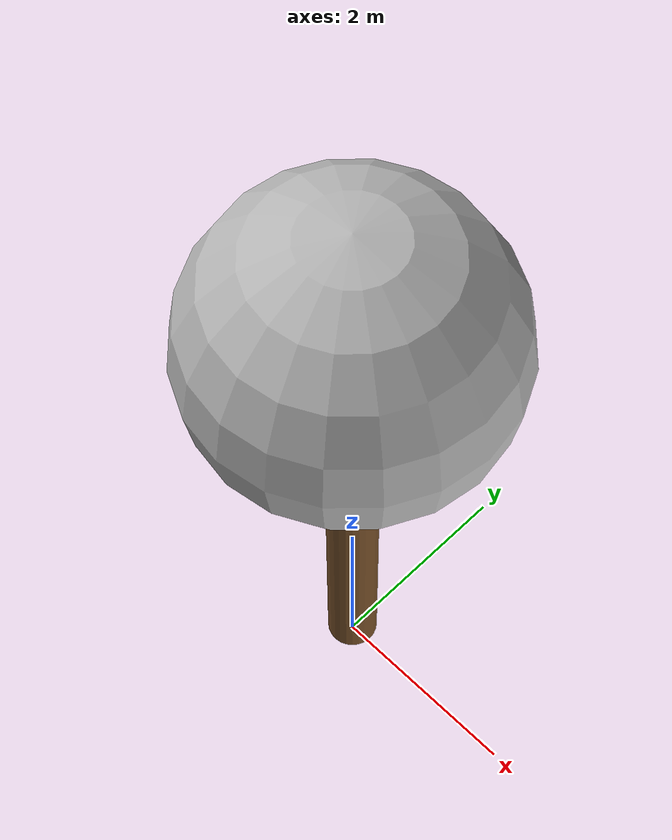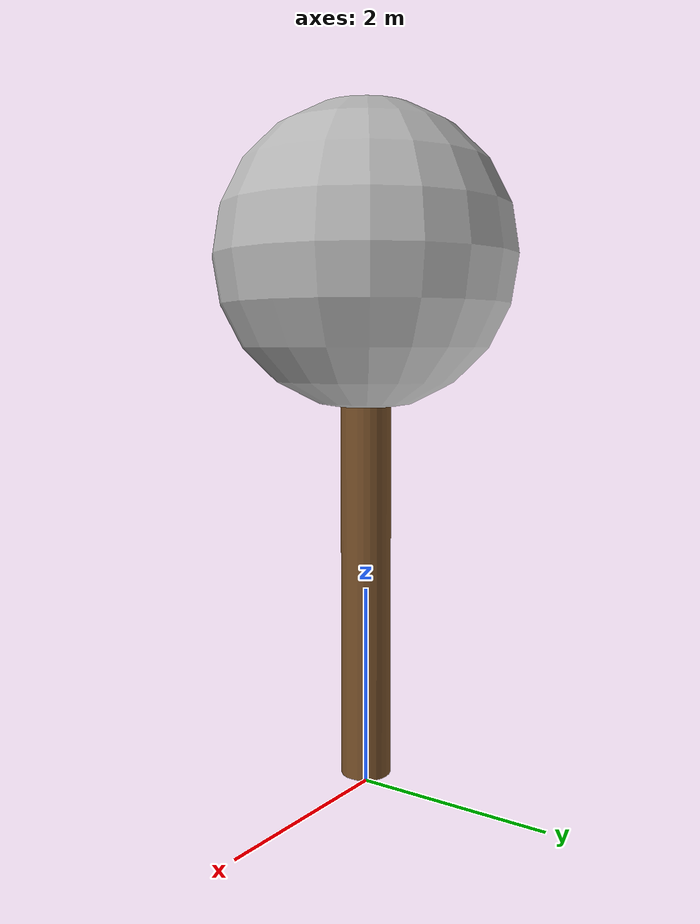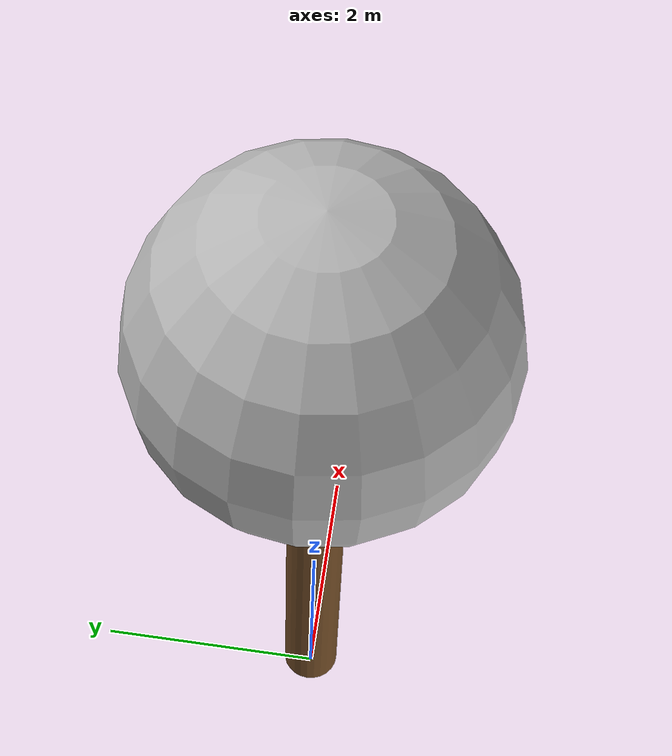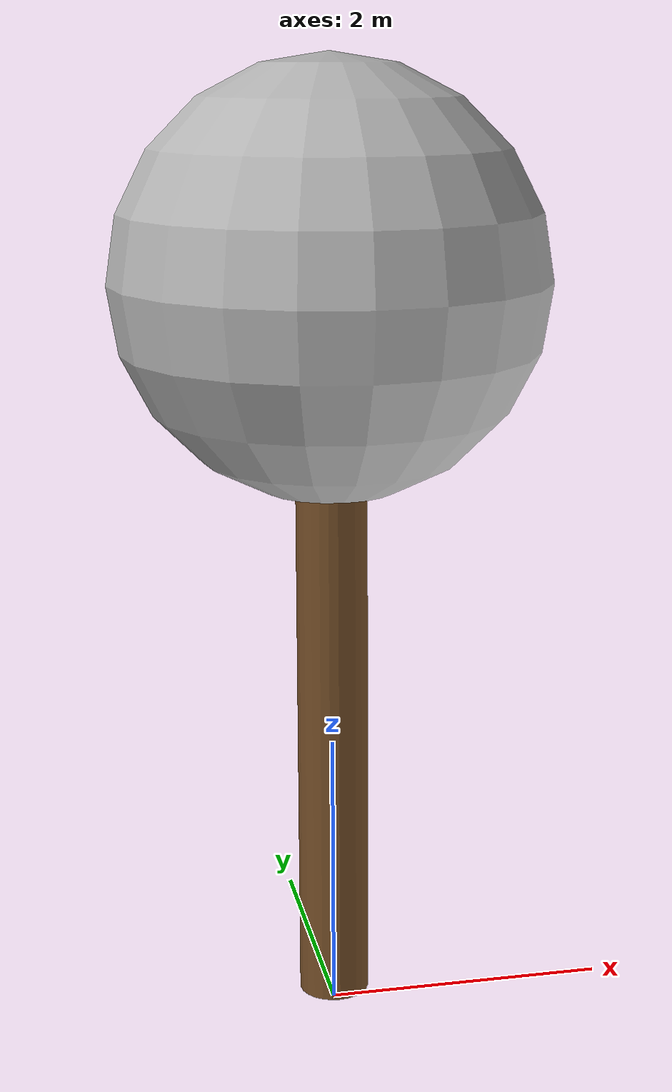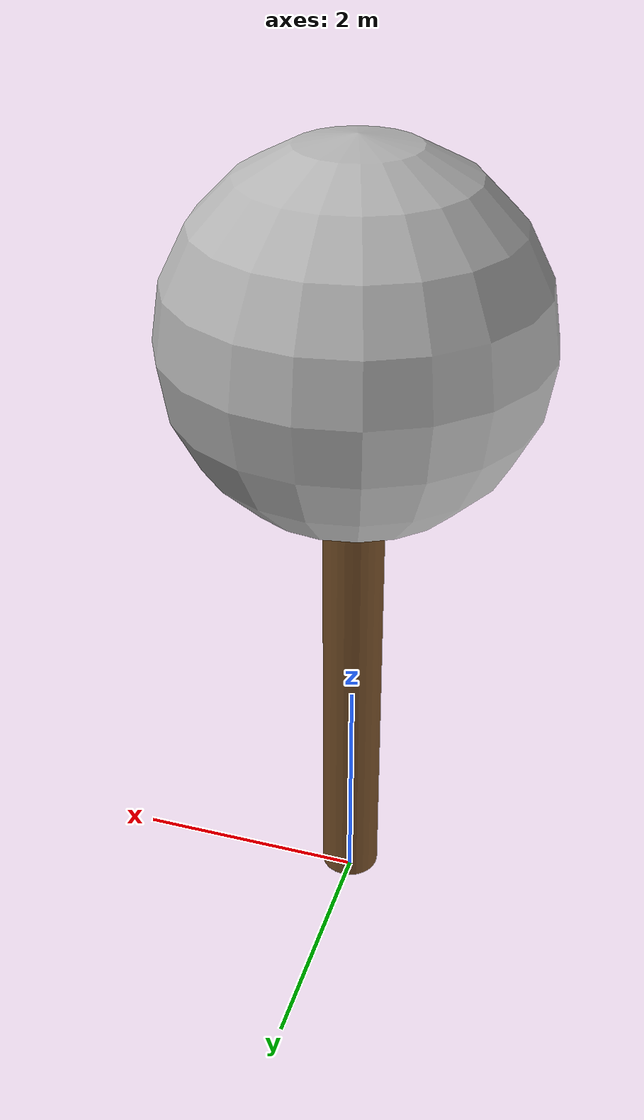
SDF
<?xml version="1.0" ?>
<sdf version="1.5">
  <model name="tree_simple">
	  <static>1</static>
	<link name="link">
      <pose>0 0 0.1 0 0 0</pose>
      <inertial>
        <mass>666</mass>
        <inertia>
          <ixx>0.08611666666666669</ixx>
          <ixy>0</ixy>
          <ixz>0</ixz>
          <iyy>0.08611666666666669</iyy>
          <iyz>0</iyz>
          <izz>0.08611666666666669</izz>
        </inertia>
      </inertial>

      <collision name="collision_trunk">
        <pose>0 0 2.0 0 0 0</pose>
        <geometry>
          <cylinder>
            <radius>0.25</radius>
            <length>4</length>
          </cylinder>
        </geometry>
        <surface>
          <contact>
            <poissons_ratio>0.347</poissons_ratio>
            <elastic_modulus>8.8e+09</elastic_modulus>
            <ode>
              <kp>100000</kp>
              <kd>100</kd>
              <max_vel>100.0</max_vel>
              <min_depth>0.001</min_depth>
            </ode>
          </contact>
          <friction>
            <torsional>
              <coefficient>1.0</coefficient>
              <use_patch_radius>0</use_patch_radius>
              <surface_radius>0.01</surface_radius>
            </torsional>
          </friction>
        </surface>
      </collision>

      <collision name="collision_treetop">
        <pose>0 0 5.2 0 0 0</pose>
        <geometry>
          <sphere>
            <radius>1.5</radius>
          </sphere>
        </geometry>
        <surface>
          <contact>
            <poissons_ratio>0.347</poissons_ratio>
            <elastic_modulus>8.8e+09</elastic_modulus>
            <ode>
              <kp>100000</kp>
              <kd>100</kd>
              <max_vel>100.0</max_vel>
              <min_depth>0.001</min_depth>
            </ode>
          </contact>
          <friction>
            <torsional>
              <coefficient>1.0</coefficient>
              <use_patch_radius>0</use_patch_radius>
              <surface_radius>0.01</surface_radius>
            </torsional>
          </friction>
        </surface>
      </collision>

      <visual name="trunk">
        <pose>0 0 2.0 0 0 0</pose>
        <geometry>
          <cylinder>
            <radius>0.25</radius>
            <length>4</length>
          </cylinder>
        </geometry>
        <material>
          <script>
            <uri>model://tree_simple/scripts</uri>
            <uri>model://tree_simple/materials/textures</uri>
            <name>TreeSimple/Trunk</name>
          </script>
        </material>
      </visual>

      <visual name="treetop">
        <pose>0 0 5.2 0 0 0</pose>
        <geometry>
          <sphere>
            <radius>1.5</radius>
          </sphere>
        </geometry>
        <material>
          <script>
            <uri>model://tree_simple/scripts</uri>
            <uri>model://tree_simple/materials/textures</uri>
            <name>TreeSimple/Treetop</name>
          </script>
        </material>
      </visual>

    </link>
  </model>
</sdf>
